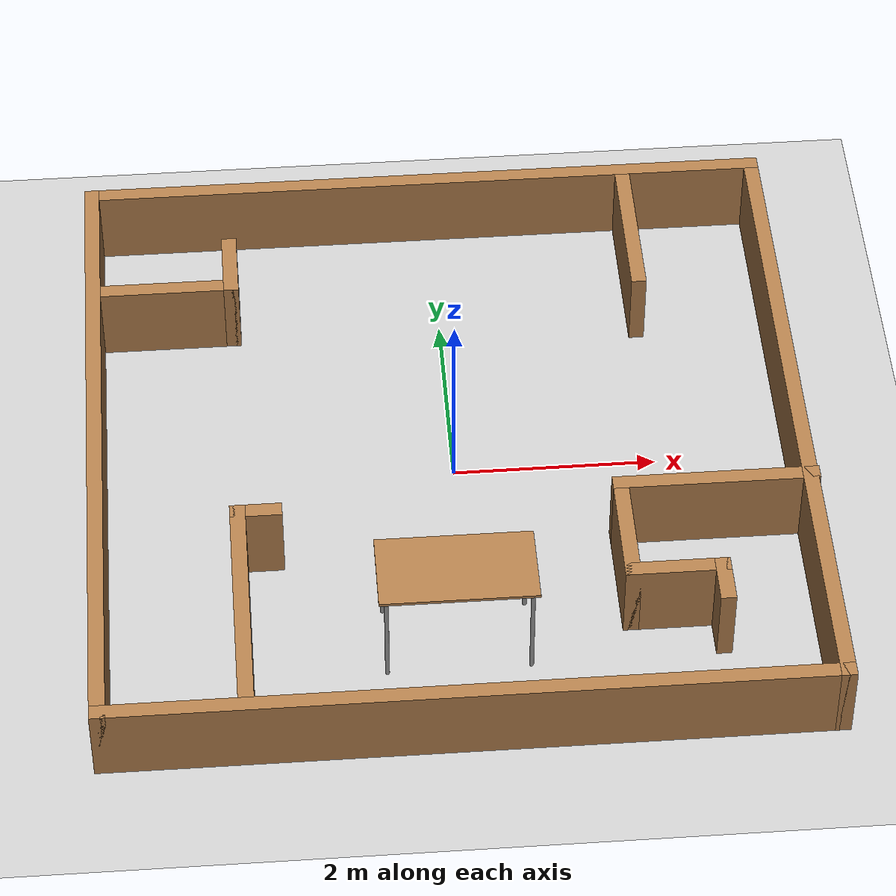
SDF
<sdf version="1.7">
 <world name="default">
  <light name="sun" type="directional">
   <pose>0 0 10 0 -0 0</pose>
   <diffuse>0.8 0.8 0.8 1</diffuse>
   <specular>0.2 0.2 0.2 1</specular>
   <attenuation>
    <range>1000</range>
    <constant>0.9</constant>
    <linear>0.01</linear>
    <quadratic>0.001</quadratic>
   </attenuation>
   <direction>-0.5 0.1 -0.9</direction>
   <spot><inner_angle>0</inner_angle><outer_angle>0</outer_angle><falloff>0</falloff></spot>
  </light>
  <model name="ground_plane">
   <static>1</static>
   <link name="link">
    <collision name="collision">
     <geometry><plane><normal>0 0 1</normal><size>100 100</size></plane></geometry>
     <surface>
      <contact><collide_bitmask>65535</collide_bitmask></contact>
      <friction><ode><mu>100</mu><mu2>50</mu2></ode></friction>
     </surface>
    </collision>
    <visual name="visual">
     <cast_shadows>0</cast_shadows>
     <geometry><plane><normal>0 0 1</normal><size>100 100</size></plane></geometry>
     <material>
      <script><uri>file://media/materials/scripts/gazebo.material</uri><name>Gazebo/Grey</name></script>
     </material>
    </visual>
   </link>
  </model>
  <gravity>0 0 -9.8</gravity>
  <magnetic_field>6e-06 2.3e-05 -4.2e-05</magnetic_field>
  <atmosphere type="adiabatic"/>
  <physics type="ode">
   <max_step_size>0.001</max_step_size>
   <real_time_factor>1</real_time_factor>
   <real_time_update_rate>1000</real_time_update_rate>
  </physics>
  <scene><ambient>0.4 0.4 0.4 1</ambient><background>0.7 0.7 0.7 1</background><shadows>1</shadows></scene>
  <spherical_coordinates>
   <surface_model>EARTH_WGS84</surface_model>
   <latitude_deg>0</latitude_deg>
   <longitude_deg>0</longitude_deg>
   <elevation>0</elevation>
   <heading_deg>0</heading_deg>
  </spherical_coordinates>
  <model name="bbot_nav3">
   <pose>0.5 0 0 0 -0 0</pose>
   <link name="Wall_10">
    <collision name="Wall_10_Collision">
     <geometry><box><size>2.5 0.15 0.8</size></box></geometry>
     <pose>0 0 0.4 0 -0 0</pose>
    </collision>
    <visual name="Wall_10_Visual">
     <pose>0 0 0.4 0 -0 0</pose>
     <geometry><box><size>2.5 0.15 0.8</size></box></geometry>
     <material>
      <script><uri>file://media/materials/scripts/gazebo.material</uri><name>Gazebo/Wood</name></script>
      <ambient>1 1 1 1</ambient>
     </material>
     <meta><layer>0</layer></meta>
    </visual>
    <pose>-2.6455 -2.25 0 0 -0 1.5708</pose>
   </link>
   <link name="Wall_11">
    <collision name="Wall_11_Collision">
     <geometry><box><size>0.5 0.15 0.8</size></box></geometry>
     <pose>0 0 0.4 0 -0 0</pose>
    </collision>
    <visual name="Wall_11_Visual">
     <pose>0 0 0.4 0 -0 0</pose>
     <geometry><box><size>0.5 0.15 0.8</size></box></geometry>
     <material>
      <script><uri>file://media/materials/scripts/gazebo.material</uri><name>Gazebo/Wood</name></script>
      <ambient>1 1 1 1</ambient>
     </material>
     <meta><layer>0</layer></meta>
    </visual>
    <pose>-2.4705 -1.075 0 0 -0 0</pose>
   </link>
   <link name="Wall_14">
    <collision name="Wall_14_Collision">
     <geometry><box><size>1.75 0.15 0.8</size></box></geometry>
     <pose>0 0 0.4 0 -0 0</pose>
    </collision>
    <visual name="Wall_14_Visual">
     <pose>0 0 0.4 0 -0 0</pose>
     <geometry><box><size>1.75 0.15 0.8</size></box></geometry>
     <material>
      <script><uri>file://media/materials/scripts/gazebo.material</uri><name>Gazebo/Wood</name></script>
      <ambient>1 1 1 1</ambient>
     </material>
     <meta><layer>0</layer></meta>
    </visual>
    <pose>1.5045 2.625 0 0 -0 -1.5708</pose>
   </link>
   <link name="Wall_16">
    <collision name="Wall_16_Collision">
     <geometry><box><size>1.5 0.15 0.8</size></box></geometry>
     <pose>0 0 0.4 0 -0 0</pose>
    </collision>
    <visual name="Wall_16_Visual">
     <pose>0 0 0.4 0 -0 0</pose>
     <geometry><box><size>1.5 0.15 0.8</size></box></geometry>
     <material>
      <script><uri>file://media/materials/scripts/gazebo.material</uri><name>Gazebo/Wood</name></script>
      <ambient>1 1 1 1</ambient>
     </material>
     <meta><layer>0</layer></meta>
    </visual>
    <pose>-3.2815 2.004 0 0 -0 0</pose>
   </link>
   <link name="Wall_17">
    <collision name="Wall_17_Collision">
     <geometry><box><size>0.75 0.15 0.8</size></box></geometry>
     <pose>0 0 0.4 0 -0 0</pose>
    </collision>
    <visual name="Wall_17_Visual">
     <pose>0 0 0.4 0 -0 0</pose>
     <geometry><box><size>0.75 0.15 0.8</size></box></geometry>
     <material>
      <script><uri>file://media/materials/scripts/gazebo.material</uri><name>Gazebo/Wood</name></script>
      <ambient>1 1 1 1</ambient>
     </material>
     <meta><layer>0</layer></meta>
    </visual>
    <pose>-2.6065 2.304 0 0 -0 1.5708</pose>
   </link>
   <link name="Wall_2">
    <collision name="Wall_2_Collision">
     <geometry><box><size>7 0.15 0.8</size></box></geometry>
     <pose>0 0 0.4 0 -0 0</pose>
    </collision>
    <visual name="Wall_2_Visual">
     <pose>0 0 0.4 0 -0 0</pose>
     <geometry><box><size>7 0.15 0.8</size></box></geometry>
     <material>
      <script><uri>file://media/materials/scripts/gazebo.material</uri><name>Gazebo/Wood</name></script>
      <ambient>1 1 1 1</ambient>
     </material>
     <meta><layer>0</layer></meta>
    </visual>
    <pose>-0.570499 -3.425 0 0 -0 0</pose>
   </link>
   <link name="Wall_26">
    <collision name="Wall_26_Collision">
     <geometry><box><size>2 0.15 0.8</size></box></geometry>
     <pose>0 0 0.4 0 -0 0</pose>
    </collision>
    <visual name="Wall_26_Visual">
     <pose>0 0 0.4 0 -0 0</pose>
     <geometry><box><size>2 0.15 0.8</size></box></geometry>
     <material>
      <script><uri>file://media/materials/scripts/gazebo.material</uri><name>Gazebo/Wood</name></script>
      <ambient>1 1 1 1</ambient>
     </material>
     <meta><layer>0</layer></meta>
    </visual>
    <pose>1.9475 -0.974 0 0 -0 3.14159</pose>
   </link>
   <link name="Wall_27">
    <collision name="Wall_27_Collision">
     <geometry><box><size>1.25 0.15 0.8</size></box></geometry>
     <pose>0 0 0.4 0 -0 0</pose>
    </collision>
    <visual name="Wall_27_Visual">
     <pose>0 0 0.4 0 -0 0</pose>
     <geometry><box><size>1.25 0.15 0.8</size></box></geometry>
     <material>
      <script><uri>file://media/materials/scripts/gazebo.material</uri><name>Gazebo/Wood</name></script>
      <ambient>1 1 1 1</ambient>
     </material>
     <meta><layer>0</layer></meta>
    </visual>
    <pose>1.0225 -1.524 0 0 -0 -1.5708</pose>
   </link>
   <link name="Wall_28">
    <collision name="Wall_28_Collision">
     <geometry><box><size>1 0.15 0.8</size></box></geometry>
     <pose>0 0 0.4 0 -0 0</pose>
    </collision>
    <visual name="Wall_28_Visual">
     <pose>0 0 0.4 0 -0 0</pose>
     <geometry><box><size>1 0.15 0.8</size></box></geometry>
     <material>
      <script><uri>file://media/materials/scripts/gazebo.material</uri><name>Gazebo/Wood</name></script>
      <ambient>1 1 1 1</ambient>
     </material>
     <meta><layer>0</layer></meta>
    </visual>
    <pose>1.4475 -2.074 0 0 -0 0</pose>
   </link>
   <link name="Wall_29">
    <collision name="Wall_29_Collision">
     <geometry><box><size>0.5 0.15 0.8</size></box></geometry>
     <pose>0 0 0.4 0 -0 0</pose>
    </collision>
    <visual name="Wall_29_Visual">
     <pose>0 0 0.4 0 -0 0</pose>
     <geometry><box><size>0.5 0.15 0.8</size></box></geometry>
     <material>
      <script><uri>file://media/materials/scripts/gazebo.material</uri><name>Gazebo/Wood</name></script>
      <ambient>1 1 1 1</ambient>
     </material>
     <meta><layer>0</layer></meta>
    </visual>
    <pose>1.8725 -2.249 0 0 -0 -1.5708</pose>
   </link>
   <link name="Wall_5">
    <collision name="Wall_5_Collision">
     <geometry><box><size>7 0.15 0.8</size></box></geometry>
     <pose>0 0 0.4 0 -0 0</pose>
    </collision>
    <visual name="Wall_5_Visual">
     <pose>0 0 0.4 0 -0 0</pose>
     <geometry><box><size>7 0.15 0.8</size></box></geometry>
     <material>
      <script><uri>file://media/materials/scripts/gazebo.material</uri><name>Gazebo/Wood</name></script>
      <ambient>1 1 1 1</ambient>
     </material>
     <meta><layer>0</layer></meta>
    </visual>
    <pose>2.8545 0 0 0 -0 1.5708</pose>
   </link>
   <link name="Wall_6">
    <collision name="Wall_6_Collision">
     <geometry><box><size>7 0.15 0.8</size></box></geometry>
     <pose>0 0 0.4 0 -0 0</pose>
    </collision>
    <visual name="Wall_6_Visual">
     <pose>0 0 0.4 0 -0 0</pose>
     <geometry><box><size>7 0.15 0.8</size></box></geometry>
     <material>
      <script><uri>file://media/materials/scripts/gazebo.material</uri><name>Gazebo/Wood</name></script>
      <ambient>1 1 1 1</ambient>
     </material>
     <meta><layer>0</layer></meta>
    </visual>
    <pose>-0.570499 3.425 0 0 -0 3.14159</pose>
   </link>
   <link name="Wall_7">
    <collision name="Wall_7_Collision">
     <geometry><box><size>7 0.15 0.8</size></box></geometry>
     <pose>0 0 0.4 0 -0 0</pose>
    </collision>
    <visual name="Wall_7_Visual">
     <pose>0 0 0.4 0 -0 0</pose>
     <geometry><box><size>7 0.15 0.8</size></box></geometry>
     <material>
      <script><uri>file://media/materials/scripts/gazebo.material</uri><name>Gazebo/Wood</name></script>
      <ambient>1 1 1 1</ambient>
     </material>
     <meta><layer>0</layer></meta>
    </visual>
    <pose>-3.9955 0 0 0 -0 -1.5708</pose>
   </link>
   <static>1</static>
  </model>
  <model name="table">
   <static>1</static>
   <link name="link">
    <collision name="surface">
     <pose>0 0 1 0 -0 0</pose>
     <geometry><box><size>1.5 0.8 0.03</size></box></geometry>
     <surface><friction><ode><mu>0.6</mu><mu2>0.6</mu2></ode></friction></surface>
    </collision>
    <visual name="visual1">
     <pose>0 0 1 0 -0 0</pose>
     <geometry><box><size>1.5 0.8 0.03</size></box></geometry>
     <material>
      <script><uri>file://media/materials/scripts/gazebo.material</uri><name>Gazebo/Wood</name></script>
     </material>
    </visual>
    <collision name="front_left_leg">
     <pose>0.68 0.38 0.5 0 -0 0</pose>
     <geometry><cylinder><radius>0.02</radius><length>1</length></cylinder></geometry>
    </collision>
    <visual name="front_left_leg">
     <pose>0.68 0.38 0.5 0 -0 0</pose>
     <geometry><cylinder><radius>0.02</radius><length>1</length></cylinder></geometry>
     <material>
      <script><uri>file://media/materials/scripts/gazebo.material</uri><name>Gazebo/Grey</name></script>
     </material>
    </visual>
    <collision name="front_right_leg">
     <pose>0.68 -0.38 0.5 0 -0 0</pose>
     <geometry><cylinder><radius>0.02</radius><length>1</length></cylinder></geometry>
    </collision>
    <visual name="front_right_leg">
     <pose>0.68 -0.38 0.5 0 -0 0</pose>
     <geometry><cylinder><radius>0.02</radius><length>1</length></cylinder></geometry>
     <material>
      <script><uri>file://media/materials/scripts/gazebo.material</uri><name>Gazebo/Grey</name></script>
     </material>
    </visual>
    <collision name="back_right_leg">
     <pose>-0.68 -0.38 0.5 0 -0 0</pose>
     <geometry><cylinder><radius>0.02</radius><length>1</length></cylinder></geometry>
    </collision>
    <visual name="back_right_leg">
     <pose>-0.68 -0.38 0.5 0 -0 0</pose>
     <geometry><cylinder><radius>0.02</radius><length>1</length></cylinder></geometry>
     <material>
      <script><uri>file://media/materials/scripts/gazebo.material</uri><name>Gazebo/Grey</name></script>
     </material>
    </visual>
    <collision name="back_left_leg">
     <pose>-0.68 0.38 0.5 0 -0 0</pose>
     <geometry><cylinder><radius>0.02</radius><length>1</length></cylinder></geometry>
    </collision>
    <visual name="back_left_leg">
     <pose>-0.68 0.38 0.5 0 -0 0</pose>
     <geometry><cylinder><radius>0.02</radius><length>1</length></cylinder></geometry>
     <material>
      <script><uri>file://media/materials/scripts/gazebo.material</uri><name>Gazebo/Grey</name></script>
     </material>
    </visual>
   </link>
   <pose>-0.135484 -2.12441 0 0 -0 0</pose>
  </model>
 </world>
</sdf>
